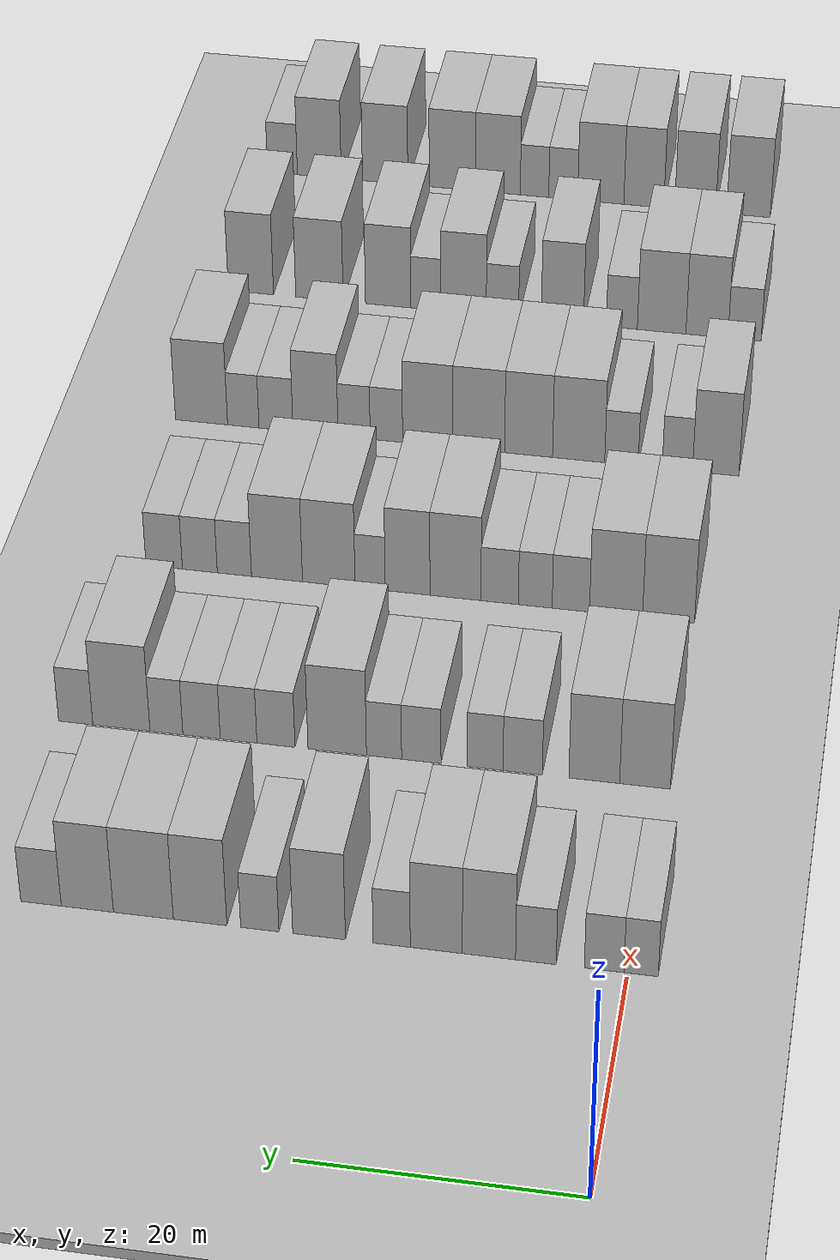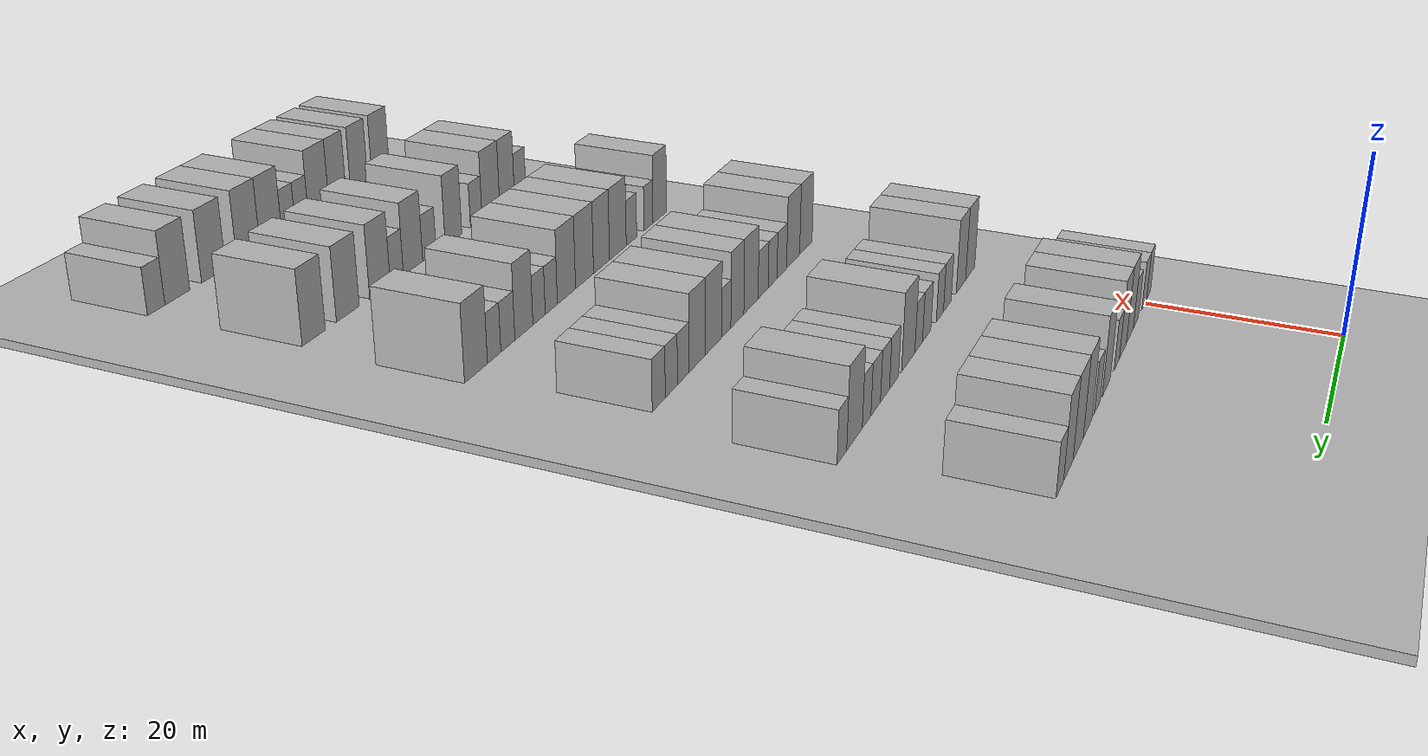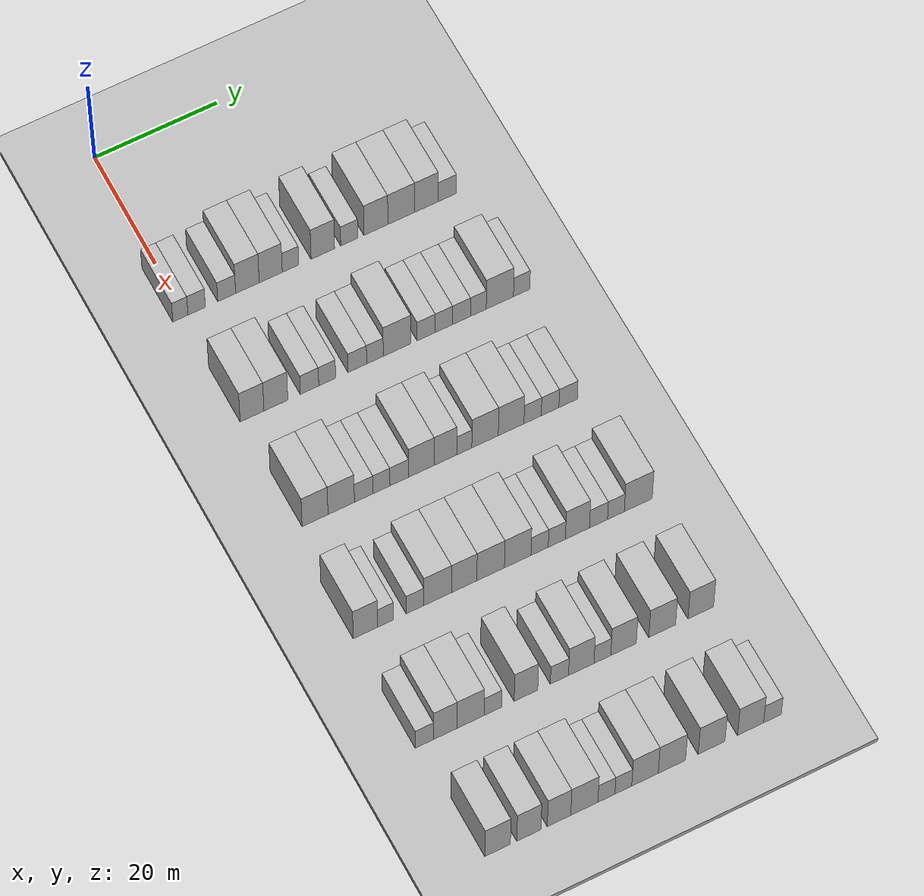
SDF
<sdf version="1.6">
 <world name="default">
  <include><name>ground_plane_1</name><uri>model://HANNAS_ground_plane</uri></include>
  <include>
   <name>ground_plane_2</name>
   <uri>model://HANNAS_ground_plane</uri>
   <pose>100 0 0  0 0 0</pose>
  </include>
  <model name="building_92">
   <static>1</static>
   <pose>25.0000 -0.9599 0 0.000000 0.000000 0.000000</pose>
   <link name="link">
    <pose>0 0 3.00 0 0 0</pose>
    <collision name="collision"><geometry><box><size>10.0000 2.4282 6.0000</size></box></geometry></collision>
    <visual name="visual">
     <cast_shadows>0</cast_shadows>
     <geometry><box><size>10.0000 2.4282 6.0000</size></box></geometry>
     <material>
      <script>
       <uri>model://HANNAS_wall/materials/scripts</uri>
       <uri>model://HANNAS_wall/materials/textures</uri>
       <name>vrc/HANNAS_wall</name>
      </script>
     </material>
    </visual>
   </link>
  </model>
  <model name="building_93">
   <static>1</static>
   <pose>25.0000 1.6542 0 0.000000 0.000000 0.000000</pose>
   <link name="link">
    <pose>0 0 3.00 0 0 0</pose>
    <collision name="collision"><geometry><box><size>10.0000 2.7998 6.0000</size></box></geometry></collision>
    <visual name="visual">
     <cast_shadows>0</cast_shadows>
     <geometry><box><size>10.0000 2.7998 6.0000</size></box></geometry>
     <material>
      <script>
       <uri>model://HANNAS_wall/materials/scripts</uri>
       <uri>model://HANNAS_wall/materials/textures</uri>
       <name>vrc/HANNAS_wall</name>
      </script>
     </material>
    </visual>
   </link>
  </model>
  <model name="building_94">
   <static>1</static>
   <pose>25.0000 6.5002 0 0.000000 0.000000 0.000000</pose>
   <link name="link">
    <pose>0 0 3.00 0 0 0</pose>
    <collision name="collision"><geometry><box><size>10.0000 2.8922 6.0000</size></box></geometry></collision>
    <visual name="visual">
     <cast_shadows>0</cast_shadows>
     <geometry><box><size>10.0000 2.8922 6.0000</size></box></geometry>
     <material>
      <script>
       <uri>model://HANNAS_wall/materials/scripts</uri>
       <uri>model://HANNAS_wall/materials/textures</uri>
       <name>vrc/HANNAS_wall</name>
      </script>
     </material>
    </visual>
   </link>
  </model>
  <model name="building_95">
   <static>1</static>
   <pose>25.0000 9.8487 0 0.000000 0.000000 0.000000</pose>
   <link name="link">
    <pose>0 0 4.50 0 0 0</pose>
    <collision name="collision"><geometry><box><size>10.0000 3.8047 9.0000</size></box></geometry></collision>
    <visual name="visual">
     <cast_shadows>0</cast_shadows>
     <geometry><box><size>10.0000 3.8047 9.0000</size></box></geometry>
     <material>
      <script>
       <uri>model://HANNAS_wall/materials/scripts</uri>
       <uri>model://HANNAS_wall/materials/textures</uri>
       <name>vrc/HANNAS_wall</name>
      </script>
     </material>
    </visual>
   </link>
  </model>
  <model name="building_96">
   <static>1</static>
   <pose>25.0000 13.6172 0 0.000000 0.000000 0.000000</pose>
   <link name="link">
    <pose>0 0 4.50 0 0 0</pose>
    <collision name="collision"><geometry><box><size>10.0000 3.7323 9.0000</size></box></geometry></collision>
    <visual name="visual">
     <cast_shadows>0</cast_shadows>
     <geometry><box><size>10.0000 3.7323 9.0000</size></box></geometry>
     <material>
      <script>
       <uri>model://HANNAS_wall/materials/scripts</uri>
       <uri>model://HANNAS_wall/materials/textures</uri>
       <name>vrc/HANNAS_wall</name>
      </script>
     </material>
    </visual>
   </link>
  </model>
  <model name="building_97">
   <static>1</static>
   <pose>25.0000 16.8190 0 0.000000 0.000000 0.000000</pose>
   <link name="link">
    <pose>0 0 3.00 0 0 0</pose>
    <collision name="collision"><geometry><box><size>10.0000 2.6713 6.0000</size></box></geometry></collision>
    <visual name="visual">
     <cast_shadows>0</cast_shadows>
     <geometry><box><size>10.0000 2.6713 6.0000</size></box></geometry>
     <material>
      <script>
       <uri>model://HANNAS_wall/materials/scripts</uri>
       <uri>model://HANNAS_wall/materials/textures</uri>
       <name>vrc/HANNAS_wall</name>
      </script>
     </material>
    </visual>
   </link>
  </model>
  <model name="building_98">
   <static>1</static>
   <pose>25.0000 22.0610 0 0.000000 0.000000 0.000000</pose>
   <link name="link">
    <pose>0 0 4.50 0 0 0</pose>
    <collision name="collision"><geometry><box><size>10.0000 3.8127 9.0000</size></box></geometry></collision>
    <visual name="visual">
     <cast_shadows>0</cast_shadows>
     <geometry><box><size>10.0000 3.8127 9.0000</size></box></geometry>
     <material>
      <script>
       <uri>model://HANNAS_wall/materials/scripts</uri>
       <uri>model://HANNAS_wall/materials/textures</uri>
       <name>vrc/HANNAS_wall</name>
      </script>
     </material>
    </visual>
   </link>
  </model>
  <model name="building_99">
   <static>1</static>
   <pose>25.0000 26.3583 0 0.000000 0.000000 0.000000</pose>
   <link name="link">
    <pose>0 0 3.00 0 0 0</pose>
    <collision name="collision"><geometry><box><size>10.0000 2.7819 6.0000</size></box></geometry></collision>
    <visual name="visual">
     <cast_shadows>0</cast_shadows>
     <geometry><box><size>10.0000 2.7819 6.0000</size></box></geometry>
     <material>
      <script>
       <uri>model://HANNAS_wall/materials/scripts</uri>
       <uri>model://HANNAS_wall/materials/textures</uri>
       <name>vrc/HANNAS_wall</name>
      </script>
     </material>
    </visual>
   </link>
  </model>
  <model name="building_100">
   <static>1</static>
   <pose>25.0000 30.7039 0 0.000000 0.000000 0.000000</pose>
   <link name="link">
    <pose>0 0 4.50 0 0 0</pose>
    <collision name="collision"><geometry><box><size>10.0000 3.9092 9.0000</size></box></geometry></collision>
    <visual name="visual">
     <cast_shadows>0</cast_shadows>
     <geometry><box><size>10.0000 3.9092 9.0000</size></box></geometry>
     <material>
      <script>
       <uri>model://HANNAS_wall/materials/scripts</uri>
       <uri>model://HANNAS_wall/materials/textures</uri>
       <name>vrc/HANNAS_wall</name>
      </script>
     </material>
    </visual>
   </link>
  </model>
  <model name="building_101">
   <static>1</static>
   <pose>25.0000 34.8536 0 0.000000 0.000000 0.000000</pose>
   <link name="link">
    <pose>0 0 4.50 0 0 0</pose>
    <collision name="collision"><geometry><box><size>10.0000 4.3902 9.0000</size></box></geometry></collision>
    <visual name="visual">
     <cast_shadows>0</cast_shadows>
     <geometry><box><size>10.0000 4.3902 9.0000</size></box></geometry>
     <material>
      <script>
       <uri>model://HANNAS_wall/materials/scripts</uri>
       <uri>model://HANNAS_wall/materials/textures</uri>
       <name>vrc/HANNAS_wall</name>
      </script>
     </material>
    </visual>
   </link>
  </model>
  <model name="building_102">
   <static>1</static>
   <pose>25.0000 38.9670 0 0.000000 0.000000 0.000000</pose>
   <link name="link">
    <pose>0 0 4.50 0 0 0</pose>
    <collision name="collision"><geometry><box><size>10.0000 3.8365 9.0000</size></box></geometry></collision>
    <visual name="visual">
     <cast_shadows>0</cast_shadows>
     <geometry><box><size>10.0000 3.8365 9.0000</size></box></geometry>
     <material>
      <script>
       <uri>model://HANNAS_wall/materials/scripts</uri>
       <uri>model://HANNAS_wall/materials/textures</uri>
       <name>vrc/HANNAS_wall</name>
      </script>
     </material>
    </visual>
   </link>
  </model>
  <model name="building_103">
   <static>1</static>
   <pose>25.0000 42.3811 0 0.000000 0.000000 0.000000</pose>
   <link name="link">
    <pose>0 0 3.00 0 0 0</pose>
    <collision name="collision"><geometry><box><size>10.0000 2.9918 6.0000</size></box></geometry></collision>
    <visual name="visual">
     <cast_shadows>0</cast_shadows>
     <geometry><box><size>10.0000 2.9918 6.0000</size></box></geometry>
     <material>
      <script>
       <uri>model://HANNAS_wall/materials/scripts</uri>
       <uri>model://HANNAS_wall/materials/textures</uri>
       <name>vrc/HANNAS_wall</name>
      </script>
     </material>
    </visual>
   </link>
  </model>
  <model name="building_267">
   <static>1</static>
   <pose>44.0000 0.9921 0 0.000000 0.000000 0.000000</pose>
   <link name="link">
    <pose>0 0 4.50 0 0 0</pose>
    <collision name="collision"><geometry><box><size>10.0000 3.8087 9.0000</size></box></geometry></collision>
    <visual name="visual">
     <cast_shadows>0</cast_shadows>
     <geometry><box><size>10.0000 3.8087 9.0000</size></box></geometry>
     <material>
      <script>
       <uri>model://HANNAS_wall/materials/scripts</uri>
       <uri>model://HANNAS_wall/materials/textures</uri>
       <name>vrc/HANNAS_wall</name>
      </script>
     </material>
    </visual>
   </link>
  </model>
  <model name="building_268">
   <static>1</static>
   <pose>44.0000 4.8037 0 0.000000 0.000000 0.000000</pose>
   <link name="link">
    <pose>0 0 4.50 0 0 0</pose>
    <collision name="collision"><geometry><box><size>10.0000 3.8146 9.0000</size></box></geometry></collision>
    <visual name="visual">
     <cast_shadows>0</cast_shadows>
     <geometry><box><size>10.0000 3.8146 9.0000</size></box></geometry>
     <material>
      <script>
       <uri>model://HANNAS_wall/materials/scripts</uri>
       <uri>model://HANNAS_wall/materials/textures</uri>
       <name>vrc/HANNAS_wall</name>
      </script>
     </material>
    </visual>
   </link>
  </model>
  <model name="building_269">
   <static>1</static>
   <pose>44.0000 10.1950 0 0.000000 0.000000 0.000000</pose>
   <link name="link">
    <pose>0 0 3.00 0 0 0</pose>
    <collision name="collision"><geometry><box><size>10.0000 2.9679 6.0000</size></box></geometry></collision>
    <visual name="visual">
     <cast_shadows>0</cast_shadows>
     <geometry><box><size>10.0000 2.9679 6.0000</size></box></geometry>
     <material>
      <script>
       <uri>model://HANNAS_wall/materials/scripts</uri>
       <uri>model://HANNAS_wall/materials/textures</uri>
       <name>vrc/HANNAS_wall</name>
      </script>
     </material>
    </visual>
   </link>
  </model>
  <model name="building_270">
   <static>1</static>
   <pose>44.0000 13.0330 0 0.000000 0.000000 0.000000</pose>
   <link name="link">
    <pose>0 0 3.00 0 0 0</pose>
    <collision name="collision"><geometry><box><size>10.0000 2.7082 6.0000</size></box></geometry></collision>
    <visual name="visual">
     <cast_shadows>0</cast_shadows>
     <geometry><box><size>10.0000 2.7082 6.0000</size></box></geometry>
     <material>
      <script>
       <uri>model://HANNAS_wall/materials/scripts</uri>
       <uri>model://HANNAS_wall/materials/textures</uri>
       <name>vrc/HANNAS_wall</name>
      </script>
     </material>
    </visual>
   </link>
  </model>
  <model name="building_271">
   <static>1</static>
   <pose>44.0000 17.8860 0 0.000000 0.000000 0.000000</pose>
   <link name="link">
    <pose>0 0 3.00 0 0 0</pose>
    <collision name="collision"><geometry><box><size>10.0000 2.9978 6.0000</size></box></geometry></collision>
    <visual name="visual">
     <cast_shadows>0</cast_shadows>
     <geometry><box><size>10.0000 2.9978 6.0000</size></box></geometry>
     <material>
      <script>
       <uri>model://HANNAS_wall/materials/scripts</uri>
       <uri>model://HANNAS_wall/materials/textures</uri>
       <name>vrc/HANNAS_wall</name>
      </script>
     </material>
    </visual>
   </link>
  </model>
  <model name="building_272">
   <static>1</static>
   <pose>44.0000 20.7259 0 0.000000 0.000000 0.000000</pose>
   <link name="link">
    <pose>0 0 3.00 0 0 0</pose>
    <collision name="collision"><geometry><box><size>10.0000 2.6821 6.0000</size></box></geometry></collision>
    <visual name="visual">
     <cast_shadows>0</cast_shadows>
     <geometry><box><size>10.0000 2.6821 6.0000</size></box></geometry>
     <material>
      <script>
       <uri>model://HANNAS_wall/materials/scripts</uri>
       <uri>model://HANNAS_wall/materials/textures</uri>
       <name>vrc/HANNAS_wall</name>
      </script>
     </material>
    </visual>
   </link>
  </model>
  <model name="building_273">
   <static>1</static>
   <pose>44.0000 24.3074 0 0.000000 0.000000 0.000000</pose>
   <link name="link">
    <pose>0 0 4.50 0 0 0</pose>
    <collision name="collision"><geometry><box><size>10.0000 4.4809 9.0000</size></box></geometry></collision>
    <visual name="visual">
     <cast_shadows>0</cast_shadows>
     <geometry><box><size>10.0000 4.4809 9.0000</size></box></geometry>
     <material>
      <script>
       <uri>model://HANNAS_wall/materials/scripts</uri>
       <uri>model://HANNAS_wall/materials/textures</uri>
       <name>vrc/HANNAS_wall</name>
      </script>
     </material>
    </visual>
   </link>
  </model>
  <model name="building_274">
   <static>1</static>
   <pose>44.0000 29.0131 0 0.000000 0.000000 0.000000</pose>
   <link name="link">
    <pose>0 0 3.00 0 0 0</pose>
    <collision name="collision"><geometry><box><size>10.0000 2.9305 6.0000</size></box></geometry></collision>
    <visual name="visual">
     <cast_shadows>0</cast_shadows>
     <geometry><box><size>10.0000 2.9305 6.0000</size></box></geometry>
     <material>
      <script>
       <uri>model://HANNAS_wall/materials/scripts</uri>
       <uri>model://HANNAS_wall/materials/textures</uri>
       <name>vrc/HANNAS_wall</name>
      </script>
     </material>
    </visual>
   </link>
  </model>
  <model name="building_275">
   <static>1</static>
   <pose>44.0000 31.8900 0 0.000000 0.000000 0.000000</pose>
   <link name="link">
    <pose>0 0 3.00 0 0 0</pose>
    <collision name="collision"><geometry><box><size>10.0000 2.8233 6.0000</size></box></geometry></collision>
    <visual name="visual">
     <cast_shadows>0</cast_shadows>
     <geometry><box><size>10.0000 2.8233 6.0000</size></box></geometry>
     <material>
      <script>
       <uri>model://HANNAS_wall/materials/scripts</uri>
       <uri>model://HANNAS_wall/materials/textures</uri>
       <name>vrc/HANNAS_wall</name>
      </script>
     </material>
    </visual>
   </link>
  </model>
  <model name="building_276">
   <static>1</static>
   <pose>44.0000 34.7495 0 0.000000 0.000000 0.000000</pose>
   <link name="link">
    <pose>0 0 3.00 0 0 0</pose>
    <collision name="collision"><geometry><box><size>10.0000 2.8956 6.0000</size></box></geometry></collision>
    <visual name="visual">
     <cast_shadows>0</cast_shadows>
     <geometry><box><size>10.0000 2.8956 6.0000</size></box></geometry>
     <material>
      <script>
       <uri>model://HANNAS_wall/materials/scripts</uri>
       <uri>model://HANNAS_wall/materials/textures</uri>
       <name>vrc/HANNAS_wall</name>
      </script>
     </material>
    </visual>
   </link>
  </model>
  <model name="building_277">
   <static>1</static>
   <pose>44.0000 37.4737 0 0.000000 0.000000 0.000000</pose>
   <link name="link">
    <pose>0 0 3.00 0 0 0</pose>
    <collision name="collision"><geometry><box><size>10.0000 2.5530 6.0000</size></box></geometry></collision>
    <visual name="visual">
     <cast_shadows>0</cast_shadows>
     <geometry><box><size>10.0000 2.5530 6.0000</size></box></geometry>
     <material>
      <script>
       <uri>model://HANNAS_wall/materials/scripts</uri>
       <uri>model://HANNAS_wall/materials/textures</uri>
       <name>vrc/HANNAS_wall</name>
      </script>
     </material>
    </visual>
   </link>
  </model>
  <model name="building_278">
   <static>1</static>
   <pose>44.0000 40.9736 0 0.000000 0.000000 0.000000</pose>
   <link name="link">
    <pose>0 0 4.50 0 0 0</pose>
    <collision name="collision"><geometry><box><size>10.0000 4.4466 9.0000</size></box></geometry></collision>
    <visual name="visual">
     <cast_shadows>0</cast_shadows>
     <geometry><box><size>10.0000 4.4466 9.0000</size></box></geometry>
     <material>
      <script>
       <uri>model://HANNAS_wall/materials/scripts</uri>
       <uri>model://HANNAS_wall/materials/textures</uri>
       <name>vrc/HANNAS_wall</name>
      </script>
     </material>
    </visual>
   </link>
  </model>
  <model name="building_279">
   <static>1</static>
   <pose>44.0000 44.5325 0 0.000000 0.000000 0.000000</pose>
   <link name="link">
    <pose>0 0 3.00 0 0 0</pose>
    <collision name="collision"><geometry><box><size>10.0000 2.6713 6.0000</size></box></geometry></collision>
    <visual name="visual">
     <cast_shadows>0</cast_shadows>
     <geometry><box><size>10.0000 2.6713 6.0000</size></box></geometry>
     <material>
      <script>
       <uri>model://HANNAS_wall/materials/scripts</uri>
       <uri>model://HANNAS_wall/materials/textures</uri>
       <name>vrc/HANNAS_wall</name>
      </script>
     </material>
    </visual>
   </link>
  </model>
  <model name="building_439">
   <static>1</static>
   <pose>63.0000 1.3661 0 0.000000 0.000000 0.000000</pose>
   <link name="link">
    <pose>0 0 4.50 0 0 0</pose>
    <collision name="collision"><geometry><box><size>10.0000 4.1169 9.0000</size></box></geometry></collision>
    <visual name="visual">
     <cast_shadows>0</cast_shadows>
     <geometry><box><size>10.0000 4.1169 9.0000</size></box></geometry>
     <material>
      <script>
       <uri>model://HANNAS_wall/materials/scripts</uri>
       <uri>model://HANNAS_wall/materials/textures</uri>
       <name>vrc/HANNAS_wall</name>
      </script>
     </material>
    </visual>
   </link>
  </model>
  <model name="building_440">
   <static>1</static>
   <pose>63.0000 5.5280 0 0.000000 0.000000 0.000000</pose>
   <link name="link">
    <pose>0 0 4.50 0 0 0</pose>
    <collision name="collision"><geometry><box><size>10.0000 4.2069 9.0000</size></box></geometry></collision>
    <visual name="visual">
     <cast_shadows>0</cast_shadows>
     <geometry><box><size>10.0000 4.2069 9.0000</size></box></geometry>
     <material>
      <script>
       <uri>model://HANNAS_wall/materials/scripts</uri>
       <uri>model://HANNAS_wall/materials/textures</uri>
       <name>vrc/HANNAS_wall</name>
      </script>
     </material>
    </visual>
   </link>
  </model>
  <model name="building_441">
   <static>1</static>
   <pose>63.0000 9.1177 0 0.000000 0.000000 0.000000</pose>
   <link name="link">
    <pose>0 0 3.00 0 0 0</pose>
    <collision name="collision"><geometry><box><size>10.0000 2.9725 6.0000</size></box></geometry></collision>
    <visual name="visual">
     <cast_shadows>0</cast_shadows>
     <geometry><box><size>10.0000 2.9725 6.0000</size></box></geometry>
     <material>
      <script>
       <uri>model://HANNAS_wall/materials/scripts</uri>
       <uri>model://HANNAS_wall/materials/textures</uri>
       <name>vrc/HANNAS_wall</name>
      </script>
     </material>
    </visual>
   </link>
  </model>
  <model name="building_442">
   <static>1</static>
   <pose>63.0000 11.9498 0 0.000000 0.000000 0.000000</pose>
   <link name="link">
    <pose>0 0 3.00 0 0 0</pose>
    <collision name="collision"><geometry><box><size>10.0000 2.6917 6.0000</size></box></geometry></collision>
    <visual name="visual">
     <cast_shadows>0</cast_shadows>
     <geometry><box><size>10.0000 2.6917 6.0000</size></box></geometry>
     <material>
      <script>
       <uri>model://HANNAS_wall/materials/scripts</uri>
       <uri>model://HANNAS_wall/materials/textures</uri>
       <name>vrc/HANNAS_wall</name>
      </script>
     </material>
    </visual>
   </link>
  </model>
  <model name="building_443">
   <static>1</static>
   <pose>63.0000 14.7941 0 0.000000 0.000000 0.000000</pose>
   <link name="link">
    <pose>0 0 3.00 0 0 0</pose>
    <collision name="collision"><geometry><box><size>10.0000 2.9969 6.0000</size></box></geometry></collision>
    <visual name="visual">
     <cast_shadows>0</cast_shadows>
     <geometry><box><size>10.0000 2.9969 6.0000</size></box></geometry>
     <material>
      <script>
       <uri>model://HANNAS_wall/materials/scripts</uri>
       <uri>model://HANNAS_wall/materials/textures</uri>
       <name>vrc/HANNAS_wall</name>
      </script>
     </material>
    </visual>
   </link>
  </model>
  <model name="building_444">
   <static>1</static>
   <pose>63.0000 18.3372 0 0.000000 0.000000 0.000000</pose>
   <link name="link">
    <pose>0 0 4.50 0 0 0</pose>
    <collision name="collision"><geometry><box><size>10.0000 4.0893 9.0000</size></box></geometry></collision>
    <visual name="visual">
     <cast_shadows>0</cast_shadows>
     <geometry><box><size>10.0000 4.0893 9.0000</size></box></geometry>
     <material>
      <script>
       <uri>model://HANNAS_wall/materials/scripts</uri>
       <uri>model://HANNAS_wall/materials/textures</uri>
       <name>vrc/HANNAS_wall</name>
      </script>
     </material>
    </visual>
   </link>
  </model>
  <model name="building_445">
   <static>1</static>
   <pose>63.0000 22.1837 0 0.000000 0.000000 0.000000</pose>
   <link name="link">
    <pose>0 0 4.50 0 0 0</pose>
    <collision name="collision"><geometry><box><size>10.0000 3.6038 9.0000</size></box></geometry></collision>
    <visual name="visual">
     <cast_shadows>0</cast_shadows>
     <geometry><box><size>10.0000 3.6038 9.0000</size></box></geometry>
     <material>
      <script>
       <uri>model://HANNAS_wall/materials/scripts</uri>
       <uri>model://HANNAS_wall/materials/textures</uri>
       <name>vrc/HANNAS_wall</name>
      </script>
     </material>
    </visual>
   </link>
  </model>
  <model name="building_446">
   <static>1</static>
   <pose>63.0000 25.2015 0 0.000000 0.000000 0.000000</pose>
   <link name="link">
    <pose>0 0 3.00 0 0 0</pose>
    <collision name="collision"><geometry><box><size>10.0000 2.4317 6.0000</size></box></geometry></collision>
    <visual name="visual">
     <cast_shadows>0</cast_shadows>
     <geometry><box><size>10.0000 2.4317 6.0000</size></box></geometry>
     <material>
      <script>
       <uri>model://HANNAS_wall/materials/scripts</uri>
       <uri>model://HANNAS_wall/materials/textures</uri>
       <name>vrc/HANNAS_wall</name>
      </script>
     </material>
    </visual>
   </link>
  </model>
  <model name="building_447">
   <static>1</static>
   <pose>63.0000 28.5497 0 0.000000 0.000000 0.000000</pose>
   <link name="link">
    <pose>0 0 4.50 0 0 0</pose>
    <collision name="collision"><geometry><box><size>10.0000 4.2646 9.0000</size></box></geometry></collision>
    <visual name="visual">
     <cast_shadows>0</cast_shadows>
     <geometry><box><size>10.0000 4.2646 9.0000</size></box></geometry>
     <material>
      <script>
       <uri>model://HANNAS_wall/materials/scripts</uri>
       <uri>model://HANNAS_wall/materials/textures</uri>
       <name>vrc/HANNAS_wall</name>
      </script>
     </material>
    </visual>
   </link>
  </model>
  <model name="building_448">
   <static>1</static>
   <pose>63.0000 32.7562 0 0.000000 0.000000 0.000000</pose>
   <link name="link">
    <pose>0 0 4.50 0 0 0</pose>
    <collision name="collision"><geometry><box><size>10.0000 4.1486 9.0000</size></box></geometry></collision>
    <visual name="visual">
     <cast_shadows>0</cast_shadows>
     <geometry><box><size>10.0000 4.1486 9.0000</size></box></geometry>
     <material>
      <script>
       <uri>model://HANNAS_wall/materials/scripts</uri>
       <uri>model://HANNAS_wall/materials/textures</uri>
       <name>vrc/HANNAS_wall</name>
      </script>
     </material>
    </visual>
   </link>
  </model>
  <model name="building_449">
   <static>1</static>
   <pose>63.0000 36.2250 0 0.000000 0.000000 0.000000</pose>
   <link name="link">
    <pose>0 0 3.00 0 0 0</pose>
    <collision name="collision"><geometry><box><size>10.0000 2.7890 6.0000</size></box></geometry></collision>
    <visual name="visual">
     <cast_shadows>0</cast_shadows>
     <geometry><box><size>10.0000 2.7890 6.0000</size></box></geometry>
     <material>
      <script>
       <uri>model://HANNAS_wall/materials/scripts</uri>
       <uri>model://HANNAS_wall/materials/textures</uri>
       <name>vrc/HANNAS_wall</name>
      </script>
     </material>
    </visual>
   </link>
  </model>
  <model name="building_450">
   <static>1</static>
   <pose>63.0000 39.0464 0 0.000000 0.000000 0.000000</pose>
   <link name="link">
    <pose>0 0 3.00 0 0 0</pose>
    <collision name="collision"><geometry><box><size>10.0000 2.8538 6.0000</size></box></geometry></collision>
    <visual name="visual">
     <cast_shadows>0</cast_shadows>
     <geometry><box><size>10.0000 2.8538 6.0000</size></box></geometry>
     <material>
      <script>
       <uri>model://HANNAS_wall/materials/scripts</uri>
       <uri>model://HANNAS_wall/materials/textures</uri>
       <name>vrc/HANNAS_wall</name>
      </script>
     </material>
    </visual>
   </link>
  </model>
  <model name="building_451">
   <static>1</static>
   <pose>63.0000 41.9651 0 0.000000 0.000000 0.000000</pose>
   <link name="link">
    <pose>0 0 3.00 0 0 0</pose>
    <collision name="collision"><geometry><box><size>10.0000 2.9834 6.0000</size></box></geometry></collision>
    <visual name="visual">
     <cast_shadows>0</cast_shadows>
     <geometry><box><size>10.0000 2.9834 6.0000</size></box></geometry>
     <material>
      <script>
       <uri>model://HANNAS_wall/materials/scripts</uri>
       <uri>model://HANNAS_wall/materials/textures</uri>
       <name>vrc/HANNAS_wall</name>
      </script>
     </material>
    </visual>
   </link>
  </model>
  <model name="building_596">
   <static>1</static>
   <pose>82.0000 -0.4270 0 0.000000 0.000000 0.000000</pose>
   <link name="link">
    <pose>0 0 4.50 0 0 0</pose>
    <collision name="collision"><geometry><box><size>10.0000 3.8534 9.0000</size></box></geometry></collision>
    <visual name="visual">
     <cast_shadows>0</cast_shadows>
     <geometry><box><size>10.0000 3.8534 9.0000</size></box></geometry>
     <material>
      <script>
       <uri>model://HANNAS_wall/materials/scripts</uri>
       <uri>model://HANNAS_wall/materials/textures</uri>
       <name>vrc/HANNAS_wall</name>
      </script>
     </material>
    </visual>
   </link>
  </model>
  <model name="building_597">
   <static>1</static>
   <pose>82.0000 2.7615 0 0.000000 0.000000 0.000000</pose>
   <link name="link">
    <pose>0 0 3.00 0 0 0</pose>
    <collision name="collision"><geometry><box><size>10.0000 2.5236 6.0000</size></box></geometry></collision>
    <visual name="visual">
     <cast_shadows>0</cast_shadows>
     <geometry><box><size>10.0000 2.5236 6.0000</size></box></geometry>
     <material>
      <script>
       <uri>model://HANNAS_wall/materials/scripts</uri>
       <uri>model://HANNAS_wall/materials/textures</uri>
       <name>vrc/HANNAS_wall</name>
      </script>
     </material>
    </visual>
   </link>
  </model>
  <model name="building_598">
   <static>1</static>
   <pose>82.0000 7.4262 0 0.000000 0.000000 0.000000</pose>
   <link name="link">
    <pose>0 0 3.00 0 0 0</pose>
    <collision name="collision"><geometry><box><size>10.0000 2.8059 6.0000</size></box></geometry></collision>
    <visual name="visual">
     <cast_shadows>0</cast_shadows>
     <geometry><box><size>10.0000 2.8059 6.0000</size></box></geometry>
     <material>
      <script>
       <uri>model://HANNAS_wall/materials/scripts</uri>
       <uri>model://HANNAS_wall/materials/textures</uri>
       <name>vrc/HANNAS_wall</name>
      </script>
     </material>
    </visual>
   </link>
  </model>
  <model name="building_599">
   <static>1</static>
   <pose>82.0000 11.0151 0 0.000000 0.000000 0.000000</pose>
   <link name="link">
    <pose>0 0 4.50 0 0 0</pose>
    <collision name="collision"><geometry><box><size>10.0000 4.3719 9.0000</size></box></geometry></collision>
    <visual name="visual">
     <cast_shadows>0</cast_shadows>
     <geometry><box><size>10.0000 4.3719 9.0000</size></box></geometry>
     <material>
      <script>
       <uri>model://HANNAS_wall/materials/scripts</uri>
       <uri>model://HANNAS_wall/materials/textures</uri>
       <name>vrc/HANNAS_wall</name>
      </script>
     </material>
    </visual>
   </link>
  </model>
  <model name="building_600">
   <static>1</static>
   <pose>82.0000 15.2160 0 0.000000 0.000000 0.000000</pose>
   <link name="link">
    <pose>0 0 4.50 0 0 0</pose>
    <collision name="collision"><geometry><box><size>10.0000 4.0298 9.0000</size></box></geometry></collision>
    <visual name="visual">
     <cast_shadows>0</cast_shadows>
     <geometry><box><size>10.0000 4.0298 9.0000</size></box></geometry>
     <material>
      <script>
       <uri>model://HANNAS_wall/materials/scripts</uri>
       <uri>model://HANNAS_wall/materials/textures</uri>
       <name>vrc/HANNAS_wall</name>
      </script>
     </material>
    </visual>
   </link>
  </model>
  <model name="building_601">
   <static>1</static>
   <pose>82.0000 19.4238 0 0.000000 0.000000 0.000000</pose>
   <link name="link">
    <pose>0 0 4.50 0 0 0</pose>
    <collision name="collision"><geometry><box><size>10.0000 4.3858 9.0000</size></box></geometry></collision>
    <visual name="visual">
     <cast_shadows>0</cast_shadows>
     <geometry><box><size>10.0000 4.3858 9.0000</size></box></geometry>
     <material>
      <script>
       <uri>model://HANNAS_wall/materials/scripts</uri>
       <uri>model://HANNAS_wall/materials/textures</uri>
       <name>vrc/HANNAS_wall</name>
      </script>
     </material>
    </visual>
   </link>
  </model>
  <model name="building_602">
   <static>1</static>
   <pose>82.0000 23.7385 0 0.000000 0.000000 0.000000</pose>
   <link name="link">
    <pose>0 0 4.50 0 0 0</pose>
    <collision name="collision"><geometry><box><size>10.0000 4.2437 9.0000</size></box></geometry></collision>
    <visual name="visual">
     <cast_shadows>0</cast_shadows>
     <geometry><box><size>10.0000 4.2437 9.0000</size></box></geometry>
     <material>
      <script>
       <uri>model://HANNAS_wall/materials/scripts</uri>
       <uri>model://HANNAS_wall/materials/textures</uri>
       <name>vrc/HANNAS_wall</name>
      </script>
     </material>
    </visual>
   </link>
  </model>
  <model name="building_603">
   <static>1</static>
   <pose>82.0000 27.2389 0 0.000000 0.000000 0.000000</pose>
   <link name="link">
    <pose>0 0 3.00 0 0 0</pose>
    <collision name="collision"><geometry><box><size>10.0000 2.7571 6.0000</size></box></geometry></collision>
    <visual name="visual">
     <cast_shadows>0</cast_shadows>
     <geometry><box><size>10.0000 2.7571 6.0000</size></box></geometry>
     <material>
      <script>
       <uri>model://HANNAS_wall/materials/scripts</uri>
       <uri>model://HANNAS_wall/materials/textures</uri>
       <name>vrc/HANNAS_wall</name>
      </script>
     </material>
    </visual>
   </link>
  </model>
  <model name="building_604">
   <static>1</static>
   <pose>82.0000 29.9845 0 0.000000 0.000000 0.000000</pose>
   <link name="link">
    <pose>0 0 3.00 0 0 0</pose>
    <collision name="collision"><geometry><box><size>10.0000 2.7340 6.0000</size></box></geometry></collision>
    <visual name="visual">
     <cast_shadows>0</cast_shadows>
     <geometry><box><size>10.0000 2.7340 6.0000</size></box></geometry>
     <material>
      <script>
       <uri>model://HANNAS_wall/materials/scripts</uri>
       <uri>model://HANNAS_wall/materials/textures</uri>
       <name>vrc/HANNAS_wall</name>
      </script>
     </material>
    </visual>
   </link>
  </model>
  <model name="building_605">
   <static>1</static>
   <pose>82.0000 33.2809 0 0.000000 0.000000 0.000000</pose>
   <link name="link">
    <pose>0 0 4.50 0 0 0</pose>
    <collision name="collision"><geometry><box><size>10.0000 3.8588 9.0000</size></box></geometry></collision>
    <visual name="visual">
     <cast_shadows>0</cast_shadows>
     <geometry><box><size>10.0000 3.8588 9.0000</size></box></geometry>
     <material>
      <script>
       <uri>model://HANNAS_wall/materials/scripts</uri>
       <uri>model://HANNAS_wall/materials/textures</uri>
       <name>vrc/HANNAS_wall</name>
      </script>
     </material>
    </visual>
   </link>
  </model>
  <model name="building_606">
   <static>1</static>
   <pose>82.0000 36.6639 0 0.000000 0.000000 0.000000</pose>
   <link name="link">
    <pose>0 0 3.00 0 0 0</pose>
    <collision name="collision"><geometry><box><size>10.0000 2.9074 6.0000</size></box></geometry></collision>
    <visual name="visual">
     <cast_shadows>0</cast_shadows>
     <geometry><box><size>10.0000 2.9074 6.0000</size></box></geometry>
     <material>
      <script>
       <uri>model://HANNAS_wall/materials/scripts</uri>
       <uri>model://HANNAS_wall/materials/textures</uri>
       <name>vrc/HANNAS_wall</name>
      </script>
     </material>
    </visual>
   </link>
  </model>
  <model name="building_607">
   <static>1</static>
   <pose>82.0000 39.4677 0 0.000000 0.000000 0.000000</pose>
   <link name="link">
    <pose>0 0 3.00 0 0 0</pose>
    <collision name="collision"><geometry><box><size>10.0000 2.7002 6.0000</size></box></geometry></collision>
    <visual name="visual">
     <cast_shadows>0</cast_shadows>
     <geometry><box><size>10.0000 2.7002 6.0000</size></box></geometry>
     <material>
      <script>
       <uri>model://HANNAS_wall/materials/scripts</uri>
       <uri>model://HANNAS_wall/materials/textures</uri>
       <name>vrc/HANNAS_wall</name>
      </script>
     </material>
    </visual>
   </link>
  </model>
  <model name="building_608">
   <static>1</static>
   <pose>82.0000 43.0624 0 0.000000 0.000000 0.000000</pose>
   <link name="link">
    <pose>0 0 4.50 0 0 0</pose>
    <collision name="collision"><geometry><box><size>10.0000 4.4891 9.0000</size></box></geometry></collision>
    <visual name="visual">
     <cast_shadows>0</cast_shadows>
     <geometry><box><size>10.0000 4.4891 9.0000</size></box></geometry>
     <material>
      <script>
       <uri>model://HANNAS_wall/materials/scripts</uri>
       <uri>model://HANNAS_wall/materials/textures</uri>
       <name>vrc/HANNAS_wall</name>
      </script>
     </material>
    </visual>
   </link>
  </model>
  <model name="building_773">
   <static>1</static>
   <pose>101.0000 -1.0086 0 0.000000 0.000000 0.000000</pose>
   <link name="link">
    <pose>0 0 3.00 0 0 0</pose>
    <collision name="collision"><geometry><box><size>10.0000 2.8774 6.0000</size></box></geometry></collision>
    <visual name="visual">
     <cast_shadows>0</cast_shadows>
     <geometry><box><size>10.0000 2.8774 6.0000</size></box></geometry>
     <material>
      <script>
       <uri>model://HANNAS_wall/materials/scripts</uri>
       <uri>model://HANNAS_wall/materials/textures</uri>
       <name>vrc/HANNAS_wall</name>
      </script>
     </material>
    </visual>
   </link>
  </model>
  <model name="building_774">
   <static>1</static>
   <pose>101.0000 2.2700 0 0.000000 0.000000 0.000000</pose>
   <link name="link">
    <pose>0 0 4.50 0 0 0</pose>
    <collision name="collision"><geometry><box><size>10.0000 3.6799 9.0000</size></box></geometry></collision>
    <visual name="visual">
     <cast_shadows>0</cast_shadows>
     <geometry><box><size>10.0000 3.6799 9.0000</size></box></geometry>
     <material>
      <script>
       <uri>model://HANNAS_wall/materials/scripts</uri>
       <uri>model://HANNAS_wall/materials/textures</uri>
       <name>vrc/HANNAS_wall</name>
      </script>
     </material>
    </visual>
   </link>
  </model>
  <model name="building_775">
   <static>1</static>
   <pose>101.0000 6.2376 0 0.000000 0.000000 0.000000</pose>
   <link name="link">
    <pose>0 0 4.50 0 0 0</pose>
    <collision name="collision"><geometry><box><size>10.0000 4.2553 9.0000</size></box></geometry></collision>
    <visual name="visual">
     <cast_shadows>0</cast_shadows>
     <geometry><box><size>10.0000 4.2553 9.0000</size></box></geometry>
     <material>
      <script>
       <uri>model://HANNAS_wall/materials/scripts</uri>
       <uri>model://HANNAS_wall/materials/textures</uri>
       <name>vrc/HANNAS_wall</name>
      </script>
     </material>
    </visual>
   </link>
  </model>
  <model name="building_776">
   <static>1</static>
   <pose>101.0000 9.7311 0 0.000000 0.000000 0.000000</pose>
   <link name="link">
    <pose>0 0 3.00 0 0 0</pose>
    <collision name="collision"><geometry><box><size>10.0000 2.7317 6.0000</size></box></geometry></collision>
    <visual name="visual">
     <cast_shadows>0</cast_shadows>
     <geometry><box><size>10.0000 2.7317 6.0000</size></box></geometry>
     <material>
      <script>
       <uri>model://HANNAS_wall/materials/scripts</uri>
       <uri>model://HANNAS_wall/materials/textures</uri>
       <name>vrc/HANNAS_wall</name>
      </script>
     </material>
    </visual>
   </link>
  </model>
  <model name="building_777">
   <static>1</static>
   <pose>101.0000 14.9612 0 0.000000 0.000000 0.000000</pose>
   <link name="link">
    <pose>0 0 4.50 0 0 0</pose>
    <collision name="collision"><geometry><box><size>10.0000 3.7284 9.0000</size></box></geometry></collision>
    <visual name="visual">
     <cast_shadows>0</cast_shadows>
     <geometry><box><size>10.0000 3.7284 9.0000</size></box></geometry>
     <material>
      <script>
       <uri>model://HANNAS_wall/materials/scripts</uri>
       <uri>model://HANNAS_wall/materials/textures</uri>
       <name>vrc/HANNAS_wall</name>
      </script>
     </material>
    </visual>
   </link>
  </model>
  <model name="building_778">
   <static>1</static>
   <pose>101.0000 20.2614 0 0.000000 0.000000 0.000000</pose>
   <link name="link">
    <pose>0 0 3.00 0 0 0</pose>
    <collision name="collision"><geometry><box><size>10.0000 2.8720 6.0000</size></box></geometry></collision>
    <visual name="visual">
     <cast_shadows>0</cast_shadows>
     <geometry><box><size>10.0000 2.8720 6.0000</size></box></geometry>
     <material>
      <script>
       <uri>model://HANNAS_wall/materials/scripts</uri>
       <uri>model://HANNAS_wall/materials/textures</uri>
       <name>vrc/HANNAS_wall</name>
      </script>
     </material>
    </visual>
   </link>
  </model>
  <model name="building_779">
   <static>1</static>
   <pose>101.0000 23.7187 0 0.000000 0.000000 0.000000</pose>
   <link name="link">
    <pose>0 0 4.50 0 0 0</pose>
    <collision name="collision"><geometry><box><size>10.0000 4.0425 9.0000</size></box></geometry></collision>
    <visual name="visual">
     <cast_shadows>0</cast_shadows>
     <geometry><box><size>10.0000 4.0425 9.0000</size></box></geometry>
     <material>
      <script>
       <uri>model://HANNAS_wall/materials/scripts</uri>
       <uri>model://HANNAS_wall/materials/textures</uri>
       <name>vrc/HANNAS_wall</name>
      </script>
     </material>
    </visual>
   </link>
  </model>
  <model name="building_780">
   <static>1</static>
   <pose>101.0000 27.0725 0 0.000000 0.000000 0.000000</pose>
   <link name="link">
    <pose>0 0 3.00 0 0 0</pose>
    <collision name="collision"><geometry><box><size>10.0000 2.6651 6.0000</size></box></geometry></collision>
    <visual name="visual">
     <cast_shadows>0</cast_shadows>
     <geometry><box><size>10.0000 2.6651 6.0000</size></box></geometry>
     <material>
      <script>
       <uri>model://HANNAS_wall/materials/scripts</uri>
       <uri>model://HANNAS_wall/materials/textures</uri>
       <name>vrc/HANNAS_wall</name>
      </script>
     </material>
    </visual>
   </link>
  </model>
  <model name="building_781">
   <static>1</static>
   <pose>101.0000 30.4294 0 0.000000 0.000000 0.000000</pose>
   <link name="link">
    <pose>0 0 4.50 0 0 0</pose>
    <collision name="collision"><geometry><box><size>10.0000 4.0488 9.0000</size></box></geometry></collision>
    <visual name="visual">
     <cast_shadows>0</cast_shadows>
     <geometry><box><size>10.0000 4.0488 9.0000</size></box></geometry>
     <material>
      <script>
       <uri>model://HANNAS_wall/materials/scripts</uri>
       <uri>model://HANNAS_wall/materials/textures</uri>
       <name>vrc/HANNAS_wall</name>
      </script>
     </material>
    </visual>
   </link>
  </model>
  <model name="building_782">
   <static>1</static>
   <pose>101.0000 36.5828 0 0.000000 0.000000 0.000000</pose>
   <link name="link">
    <pose>0 0 4.50 0 0 0</pose>
    <collision name="collision"><geometry><box><size>10.0000 4.2580 9.0000</size></box></geometry></collision>
    <visual name="visual">
     <cast_shadows>0</cast_shadows>
     <geometry><box><size>10.0000 4.2580 9.0000</size></box></geometry>
     <material>
      <script>
       <uri>model://HANNAS_wall/materials/scripts</uri>
       <uri>model://HANNAS_wall/materials/textures</uri>
       <name>vrc/HANNAS_wall</name>
      </script>
     </material>
    </visual>
   </link>
  </model>
  <model name="building_783">
   <static>1</static>
   <pose>101.0000 42.7500 0 0.000000 0.000000 0.000000</pose>
   <link name="link">
    <pose>0 0 4.50 0 0 0</pose>
    <collision name="collision"><geometry><box><size>10.0000 4.0764 9.0000</size></box></geometry></collision>
    <visual name="visual">
     <cast_shadows>0</cast_shadows>
     <geometry><box><size>10.0000 4.0764 9.0000</size></box></geometry>
     <material>
      <script>
       <uri>model://HANNAS_wall/materials/scripts</uri>
       <uri>model://HANNAS_wall/materials/textures</uri>
       <name>vrc/HANNAS_wall</name>
      </script>
     </material>
    </visual>
   </link>
  </model>
  <model name="building_947">
   <static>1</static>
   <pose>120.0000 0.4537 0 0.000000 0.000000 0.000000</pose>
   <link name="link">
    <pose>0 0 4.50 0 0 0</pose>
    <collision name="collision"><geometry><box><size>10.0000 3.9768 9.0000</size></box></geometry></collision>
    <visual name="visual">
     <cast_shadows>0</cast_shadows>
     <geometry><box><size>10.0000 3.9768 9.0000</size></box></geometry>
     <material>
      <script>
       <uri>model://HANNAS_wall/materials/scripts</uri>
       <uri>model://HANNAS_wall/materials/textures</uri>
       <name>vrc/HANNAS_wall</name>
      </script>
     </material>
    </visual>
   </link>
  </model>
  <model name="building_948">
   <static>1</static>
   <pose>120.0000 5.3230 0 0.000000 0.000000 0.000000</pose>
   <link name="link">
    <pose>0 0 4.50 0 0 0</pose>
    <collision name="collision"><geometry><box><size>10.0000 3.7619 9.0000</size></box></geometry></collision>
    <visual name="visual">
     <cast_shadows>0</cast_shadows>
     <geometry><box><size>10.0000 3.7619 9.0000</size></box></geometry>
     <material>
      <script>
       <uri>model://HANNAS_wall/materials/scripts</uri>
       <uri>model://HANNAS_wall/materials/textures</uri>
       <name>vrc/HANNAS_wall</name>
      </script>
     </material>
    </visual>
   </link>
  </model>
  <model name="building_949">
   <static>1</static>
   <pose>120.0000 10.0398 0 0.000000 0.000000 0.000000</pose>
   <link name="link">
    <pose>0 0 4.50 0 0 0</pose>
    <collision name="collision"><geometry><box><size>10.0000 3.6716 9.0000</size></box></geometry></collision>
    <visual name="visual">
     <cast_shadows>0</cast_shadows>
     <geometry><box><size>10.0000 3.6716 9.0000</size></box></geometry>
     <material>
      <script>
       <uri>model://HANNAS_wall/materials/scripts</uri>
       <uri>model://HANNAS_wall/materials/textures</uri>
       <name>vrc/HANNAS_wall</name>
      </script>
     </material>
    </visual>
   </link>
  </model>
  <model name="building_950">
   <static>1</static>
   <pose>120.0000 14.0060 0 0.000000 0.000000 0.000000</pose>
   <link name="link">
    <pose>0 0 4.50 0 0 0</pose>
    <collision name="collision"><geometry><box><size>10.0000 4.2607 9.0000</size></box></geometry></collision>
    <visual name="visual">
     <cast_shadows>0</cast_shadows>
     <geometry><box><size>10.0000 4.2607 9.0000</size></box></geometry>
     <material>
      <script>
       <uri>model://HANNAS_wall/materials/scripts</uri>
       <uri>model://HANNAS_wall/materials/textures</uri>
       <name>vrc/HANNAS_wall</name>
      </script>
     </material>
    </visual>
   </link>
  </model>
  <model name="building_951">
   <static>1</static>
   <pose>120.0000 17.4754 0 0.000000 0.000000 0.000000</pose>
   <link name="link">
    <pose>0 0 3.00 0 0 0</pose>
    <collision name="collision"><geometry><box><size>10.0000 2.6781 6.0000</size></box></geometry></collision>
    <visual name="visual">
     <cast_shadows>0</cast_shadows>
     <geometry><box><size>10.0000 2.6781 6.0000</size></box></geometry>
     <material>
      <script>
       <uri>model://HANNAS_wall/materials/scripts</uri>
       <uri>model://HANNAS_wall/materials/textures</uri>
       <name>vrc/HANNAS_wall</name>
      </script>
     </material>
    </visual>
   </link>
  </model>
  <model name="building_952">
   <static>1</static>
   <pose>120.0000 20.1312 0 0.000000 0.000000 0.000000</pose>
   <link name="link">
    <pose>0 0 3.00 0 0 0</pose>
    <collision name="collision"><geometry><box><size>10.0000 2.6337 6.0000</size></box></geometry></collision>
    <visual name="visual">
     <cast_shadows>0</cast_shadows>
     <geometry><box><size>10.0000 2.6337 6.0000</size></box></geometry>
     <material>
      <script>
       <uri>model://HANNAS_wall/materials/scripts</uri>
       <uri>model://HANNAS_wall/materials/textures</uri>
       <name>vrc/HANNAS_wall</name>
      </script>
     </material>
    </visual>
   </link>
  </model>
  <model name="building_953">
   <static>1</static>
   <pose>120.0000 23.5387 0 0.000000 0.000000 0.000000</pose>
   <link name="link">
    <pose>0 0 4.50 0 0 0</pose>
    <collision name="collision"><geometry><box><size>10.0000 4.1812 9.0000</size></box></geometry></collision>
    <visual name="visual">
     <cast_shadows>0</cast_shadows>
     <geometry><box><size>10.0000 4.1812 9.0000</size></box></geometry>
     <material>
      <script>
       <uri>model://HANNAS_wall/materials/scripts</uri>
       <uri>model://HANNAS_wall/materials/textures</uri>
       <name>vrc/HANNAS_wall</name>
      </script>
     </material>
    </visual>
   </link>
  </model>
  <model name="building_954">
   <static>1</static>
   <pose>120.0000 27.7790 0 0.000000 0.000000 0.000000</pose>
   <link name="link">
    <pose>0 0 4.50 0 0 0</pose>
    <collision name="collision"><geometry><box><size>10.0000 4.2994 9.0000</size></box></geometry></collision>
    <visual name="visual">
     <cast_shadows>0</cast_shadows>
     <geometry><box><size>10.0000 4.2994 9.0000</size></box></geometry>
     <material>
      <script>
       <uri>model://HANNAS_wall/materials/scripts</uri>
       <uri>model://HANNAS_wall/materials/textures</uri>
       <name>vrc/HANNAS_wall</name>
      </script>
     </material>
    </visual>
   </link>
  </model>
  <model name="building_955">
   <static>1</static>
   <pose>120.0000 34.0489 0 0.000000 0.000000 0.000000</pose>
   <link name="link">
    <pose>0 0 4.50 0 0 0</pose>
    <collision name="collision"><geometry><box><size>10.0000 4.2405 9.0000</size></box></geometry></collision>
    <visual name="visual">
     <cast_shadows>0</cast_shadows>
     <geometry><box><size>10.0000 4.2405 9.0000</size></box></geometry>
     <material>
      <script>
       <uri>model://HANNAS_wall/materials/scripts</uri>
       <uri>model://HANNAS_wall/materials/textures</uri>
       <name>vrc/HANNAS_wall</name>
      </script>
     </material>
    </visual>
   </link>
  </model>
  <model name="building_956">
   <static>1</static>
   <pose>120.0000 40.2361 0 0.000000 0.000000 0.000000</pose>
   <link name="link">
    <pose>0 0 4.50 0 0 0</pose>
    <collision name="collision"><geometry><box><size>10.0000 4.1339 9.0000</size></box></geometry></collision>
    <visual name="visual">
     <cast_shadows>0</cast_shadows>
     <geometry><box><size>10.0000 4.1339 9.0000</size></box></geometry>
     <material>
      <script>
       <uri>model://HANNAS_wall/materials/scripts</uri>
       <uri>model://HANNAS_wall/materials/textures</uri>
       <name>vrc/HANNAS_wall</name>
      </script>
     </material>
    </visual>
   </link>
  </model>
  <model name="building_957">
   <static>1</static>
   <pose>120.0000 43.7123 0 0.000000 0.000000 0.000000</pose>
   <link name="link">
    <pose>0 0 3.00 0 0 0</pose>
    <collision name="collision"><geometry><box><size>10.0000 2.8184 6.0000</size></box></geometry></collision>
    <visual name="visual">
     <cast_shadows>0</cast_shadows>
     <geometry><box><size>10.0000 2.8184 6.0000</size></box></geometry>
     <material>
      <script>
       <uri>model://HANNAS_wall/materials/scripts</uri>
       <uri>model://HANNAS_wall/materials/textures</uri>
       <name>vrc/HANNAS_wall</name>
      </script>
     </material>
    </visual>
   </link>
  </model>
 </world>
</sdf>
